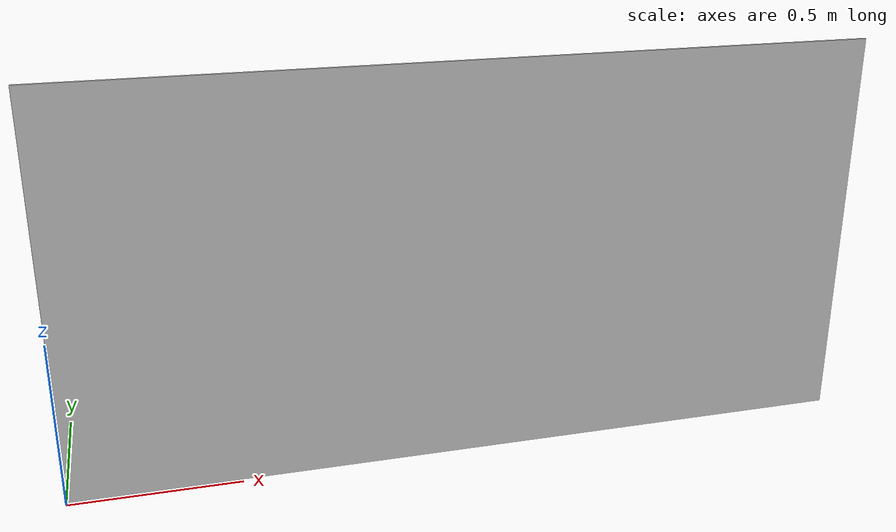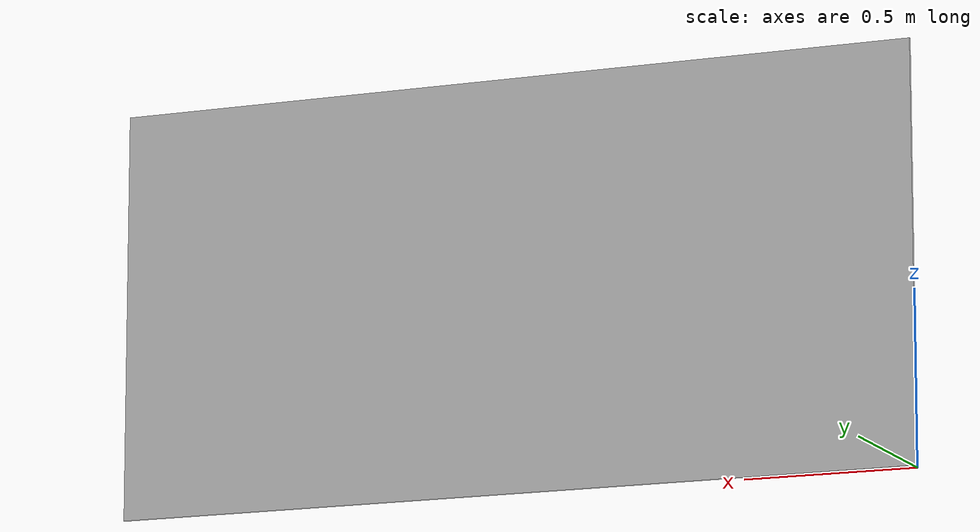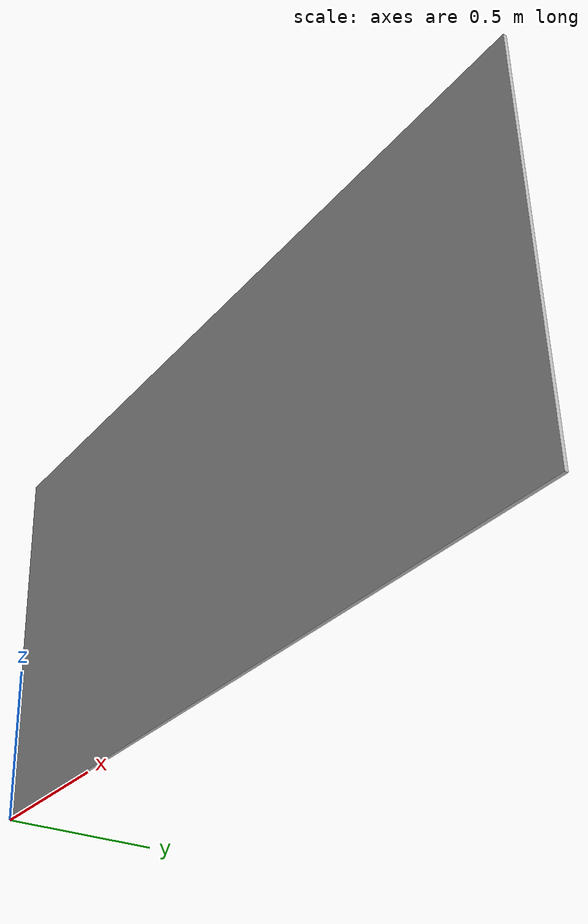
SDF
<?xml version="1.0" ?>
<sdf version="1.5">
  <model name="NistWall">
        <static>true</static>
    <link name="link">
    <gravity>0</gravity>
      <collision name="collision">
        <geometry>
          <mesh>
            <scale>1 1 1</scale>
            <uri>model://nist_wall/meshes/nist_wall.dae</uri>
          </mesh>
        </geometry>
      </collision>
      <visual name="visual">
        <geometry>
          <mesh>
            <scale>1 1 1</scale>
            <uri>model://nist_wall/meshes/nist_wall.dae</uri>
          </mesh>
        </geometry>
      </visual>
    </link>
  </model>
</sdf>
